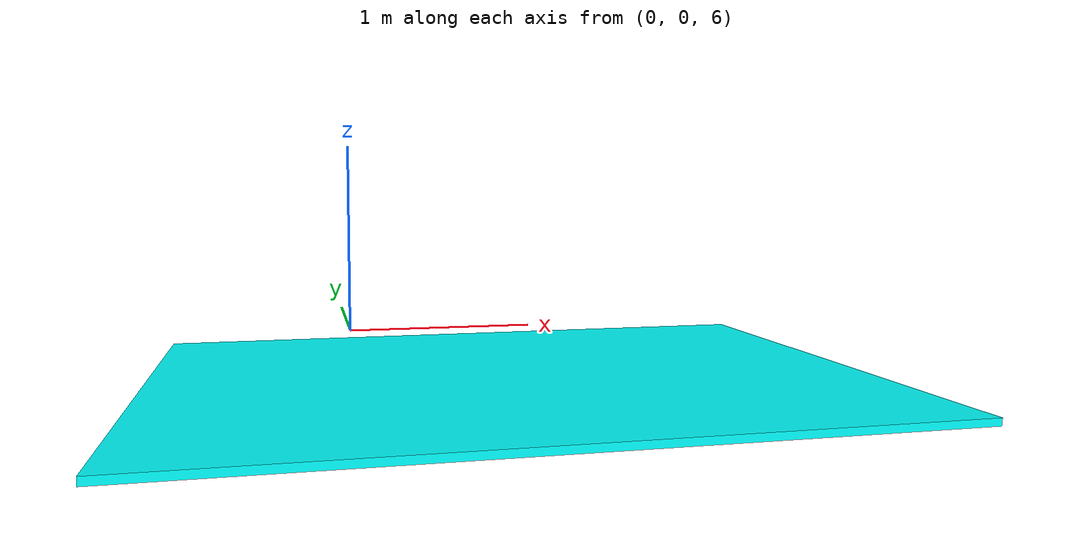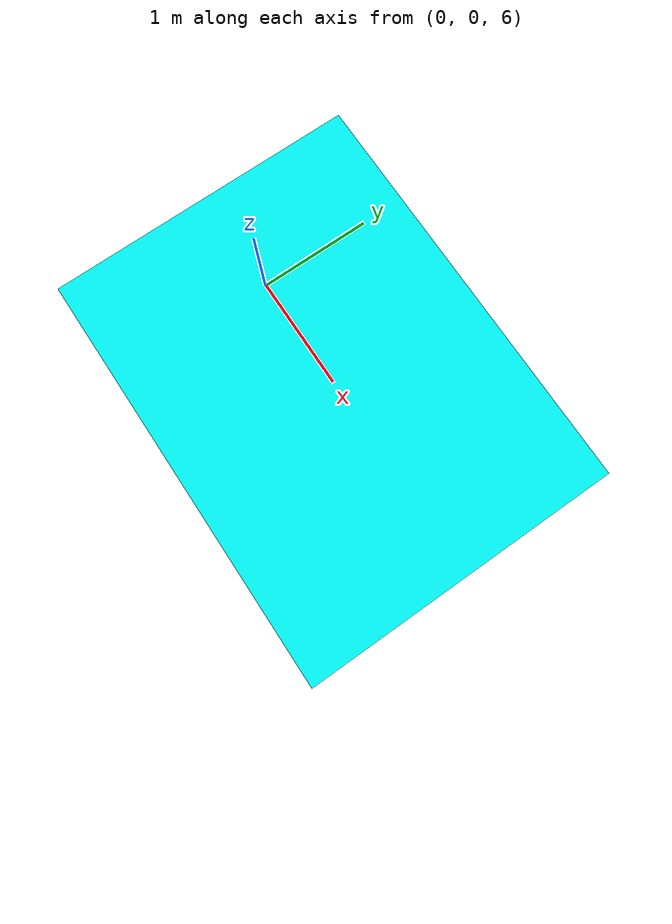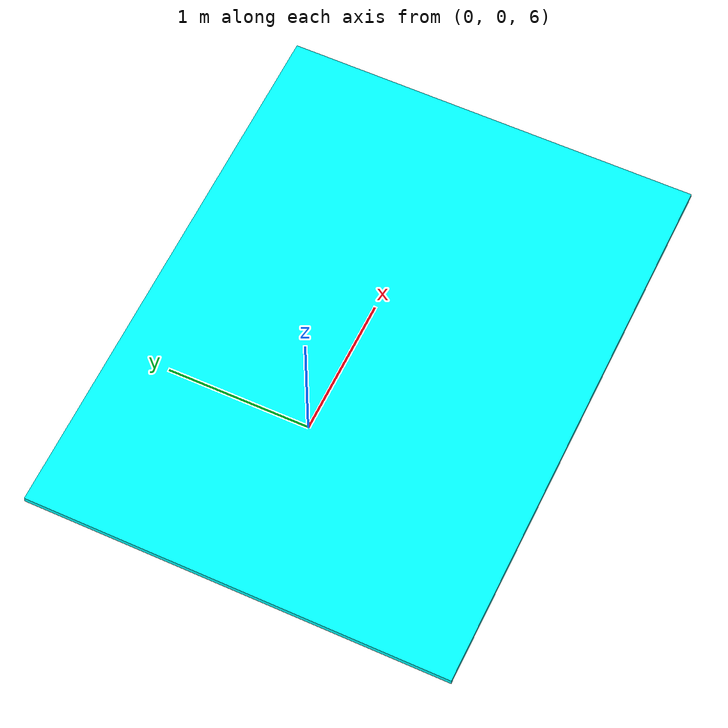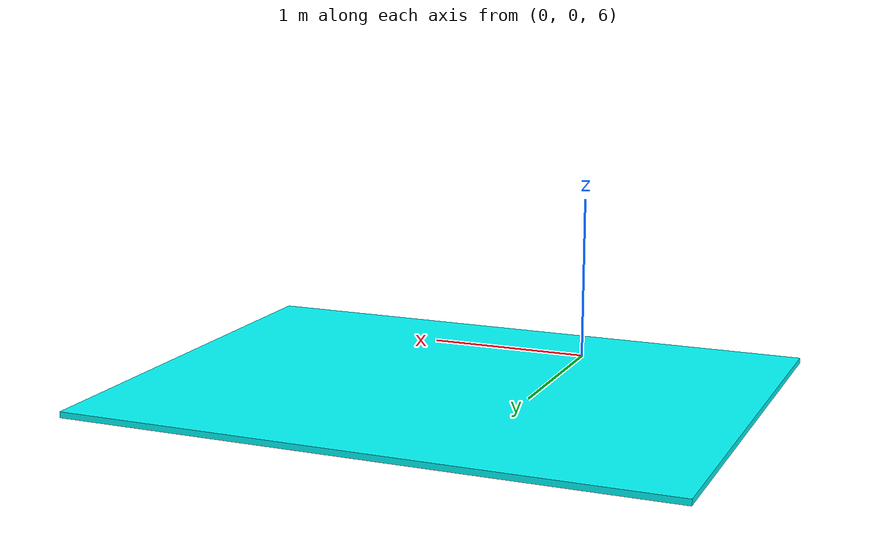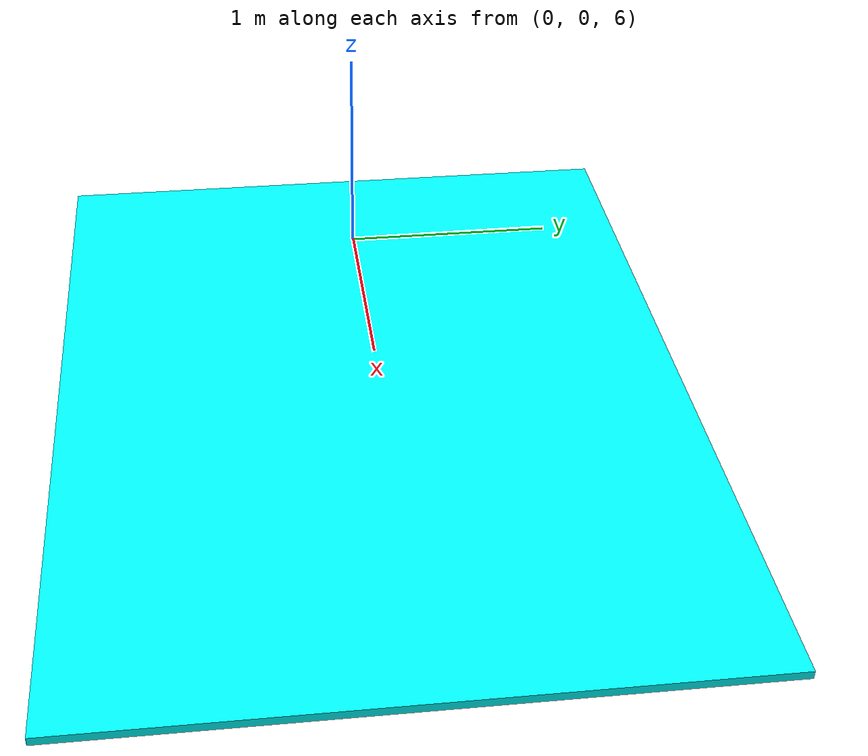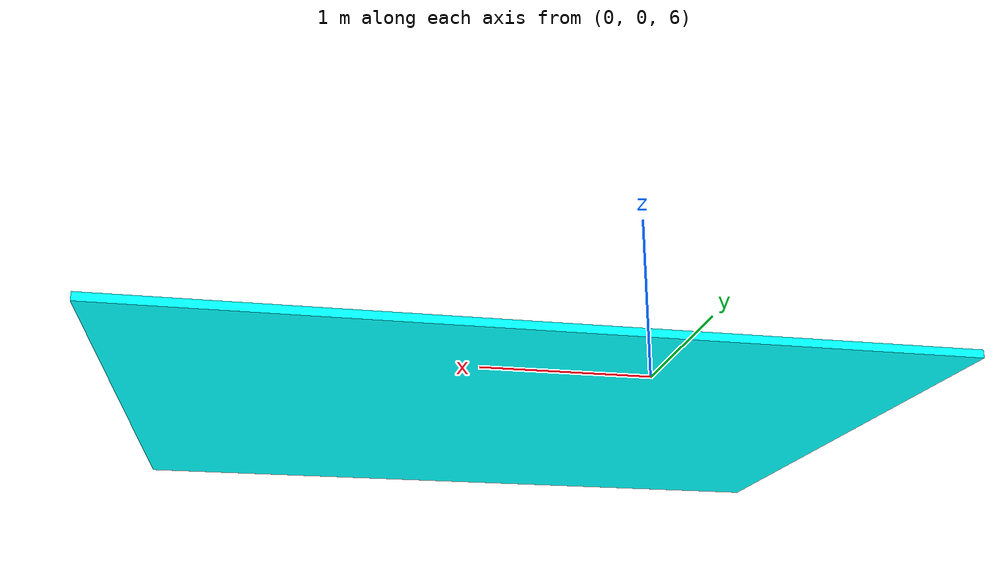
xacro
<?xml version="1.0"?>

<robot name="myfirst" xmlns:xacro="http://www.ros.org/wiki/xacro">
   <material name="green">
    <color rgba="0 0.8 0 1"/>
  </material>

  <xacro:property name="l"      value="4" />
  <xacro:property name="b"      value="3" />
  <xacro:property name="h"      value="0.04" />
  <xacro:property name="m"      value="1" />

 <link name="payload">
   <inertial>
     <origin xyz="0.9 0 5.7" rpy="0 0 0"/>
     <mass value="${m}"/>
     <inertia ixx="${m*((b*b) + (h*h))/12}"  ixy="0"  ixz="0" iyy="${m*((l*l) + (h*h))/12}" iyz="0" izz="${m*((b*b) + (l*l))/12}" />
   </inertial>

   <visual>
     <origin xyz="0.9 0 5.7" rpy="0 0 0" />
     <geometry>
       <box size="${l} ${b} ${h}" />
     </geometry>
     <material name="Cyan">
       <color rgba="0 1.0 1.0 1.0"/>
     </material>
   </visual>

   <collision>
    <origin xyz=".9 0 5.7" rpy="0 0 0"/>
    <geometry>
       <box size="${l} ${b} ${h}" />
     </geometry>
     <surface>
            <friction>
              <ode>
                <mu1>1000000</mu1>
                <mu2>1000000</mu2>
                <kp value="1000" />
                <kd value="1000" />
              </ode>
            </friction>
          </surface>
   </collision>
 </link>

 <gazebo reference="payload">
    <material>Gazebo/DarkMagentaTransparent </material>
    <mu1>1000</mu1>
    <mu2>1000</mu2>
    <kp value="1000" />
    <kd value="1000" />
 </gazebo>

</robot>
